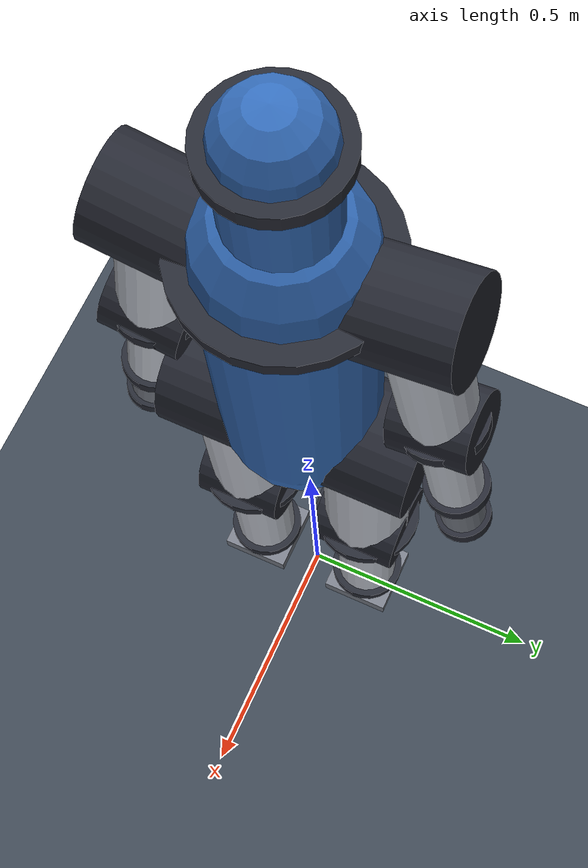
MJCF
<mujoco model="humanoid_anthropometric">
  <compiler angle="radian" autolimits="true"/>
  <option timestep="0.002" gravity="0 0 -9.81"/>
  <visual>
    <headlight ambient="0.45 0.45 0.48" diffuse="0.65 0.65 0.68" specular="0.22 0.22 0.22"/>
    <quality shadowsize="4096"/>
    <map znear="0.01" zfar="60"/>
  </visual>
  <default>
    <joint damping="0.8" armature="0.01"/>
    <geom friction="1 0.05 0.001"/>
  </default>
  <asset>
    <texture name="skybox" type="skybox" builtin="gradient" rgb1="0.16 0.18 0.23" rgb2="0.03 0.04 0.06" width="512" height="512"/>
    <texture name="grid" type="2d" builtin="checker" rgb1="0.21 0.24 0.29" rgb2="0.26 0.30 0.35" width="300" height="300"/>
    <material name="grid" texture="grid" texrepeat="6 6" specular="0.1" shininess="0.1" reflectance="0.02"/>
    <material name="mat_body" rgba="0.84 0.86 0.89 1" specular="0.35" shininess="0.45" reflectance="0.05"/>
    <material name="mat_joint" rgba="0.15 0.16 0.20 1" specular="0.6" shininess="0.7" reflectance="0.1"/>
    <material name="mat_accent" rgba="0.92 0.47 0.13 1" specular="0.45" shininess="0.55"/>
    <material name="mat_ee" rgba="0.22 0.24 0.29 1" specular="0.5" shininess="0.6"/>
    <material name="mat_alu" rgba="0.78 0.80 0.84 1" specular="0.55" shininess="0.5" reflectance="0.12"/>
    <material name="mat_steel" rgba="0.34 0.36 0.40 1" specular="0.7" shininess="0.7" reflectance="0.18"/>
    <material name="mat_cf" rgba="0.11 0.12 0.14 1" specular="0.45" shininess="0.4" reflectance="0.06"/>
    <material name="mat_ti" rgba="0.60 0.60 0.65 1" specular="0.5" shininess="0.55" reflectance="0.1"/>
    <material name="mat_shell" rgba="0.20 0.42 0.72 1" specular="0.4" shininess="0.5" reflectance="0.05"/>
    <material name="mat_metal" rgba="0.47 0.49 0.53 1" specular="0.78" shininess="0.78" reflectance="0.22"/>
    <material name="mat_rubber" rgba="0.13 0.13 0.15 1" specular="0.15" shininess="0.15"/>
  </asset>
  <worldbody>
    <light name="key" pos="1.6 -1.1 3.0" dir="-0.45 0.32 -1" diffuse="0.55 0.55 0.58" specular="0.25 0.25 0.25"/>
    <light name="fill" pos="-2.0 1.6 2.2" dir="0.5 -0.42 -1" diffuse="0.22 0.22 0.26"/>
    <geom name="floor" type="plane" size="3 3 0.1" material="grid"/>
    <body name="torso" pos="0.00000 0.00000 0.83980">
      <freejoint name="torso_free"/>
      <geom name="torso_geom" type="capsule" fromto="0 0 0 0 0 0.51250" size="0.13530" mass="18.00000" material="mat_shell"/>
      <geom name="torso_collar" type="cylinder" fromto="0 0 0.50050 0 0 0.52450" size="0.16507" material="mat_joint" mass="0" contype="0" conaffinity="0"/>
      <body name="neck" pos="0.00000 0.00000 0.51250">
        <geom name="neck_geom" type="cylinder" fromto="0 0 0 0 0 0.06150" size="0.06150" mass="0.60000" material="mat_alu"/>
        <geom name="neck_collar" type="cylinder" fromto="0 0 0.05535 0 0 0.06765" size="0.07503" material="mat_joint" mass="0" contype="0" conaffinity="0"/>
        <body name="head" pos="0.00000 0.00000 0.06150">
          <geom name="head_geom" type="capsule" fromto="0 0 0 0 0 0.18450" size="0.08200" mass="1.20000" material="mat_shell"/>
          <geom name="head_collar" type="cylinder" fromto="0 0 0.17250 0 0 0.19650" size="0.10004" material="mat_joint" mass="0" contype="0" conaffinity="0"/>
        </body>

      </body>

      <body name="l_uparm" pos="0.00000 0.19122 0.49712" euler="3.31159 0.00000 0.00000">
        <joint name="l_uparm_joint" type="hinge" axis="0.0000 1.0000 0.0000" range="-3.0000 3.0000"/>
        <geom name="l_uparm_geom" type="capsule" fromto="0 0 0 0 0 0.30340" size="0.06150" mass="1.80000" material="mat_alu"/>
        <geom name="l_uparm_motor" type="cylinder" fromto="-0.00000 -0.08150 -0.00000 0.00000 0.08150 0.00000" size="0.08350" material="mat_joint" mass="0" contype="0" conaffinity="0"/>
        <geom name="l_uparm_collar" type="cylinder" fromto="0 0 0.29140 0 0 0.31540" size="0.07503" material="mat_joint" mass="0" contype="0" conaffinity="0"/>
        <body name="l_forearm" pos="0.00000 0.00000 0.30340">
          <joint name="l_forearm_joint" type="hinge" axis="0.0000 1.0000 0.0000" range="-2.6000 0.0000"/>
          <geom name="l_forearm_geom" type="capsule" fromto="0 0 0 0 0 0.25010" size="0.04715" mass="1.00000" material="mat_alu"/>
          <geom name="l_forearm_motor" type="cylinder" fromto="-0.00000 -0.06715 -0.00000 0.00000 0.06715 0.00000" size="0.06837" material="mat_joint" mass="0" contype="0" conaffinity="0"/>
          <geom name="l_forearm_collar" type="cylinder" fromto="0 0 0.23810 0 0 0.26210" size="0.05752" material="mat_joint" mass="0" contype="0" conaffinity="0"/>
          <body name="l_hand" pos="0.00000 0.00000 0.25010">
            <geom name="l_hand_geom" type="capsule" fromto="0 0 0 0 0 0.12710" size="0.04100" mass="0.40000" material="mat_metal"/>
            <geom name="l_hand_collar" type="cylinder" fromto="0 0 0.11510 0 0 0.13910" size="0.05002" material="mat_joint" mass="0" contype="0" conaffinity="0"/>
          </body>

        </body>

      </body>

      <body name="r_uparm" pos="0.00000 -0.19122 0.49712" euler="2.97159 0.00000 0.00000">
        <joint name="r_uparm_joint" type="hinge" axis="0.0000 1.0000 0.0000" range="-3.0000 3.0000"/>
        <geom name="r_uparm_geom" type="capsule" fromto="0 0 0 0 0 0.30340" size="0.06150" mass="1.80000" material="mat_alu"/>
        <geom name="r_uparm_motor" type="cylinder" fromto="-0.00000 -0.08150 -0.00000 0.00000 0.08150 0.00000" size="0.08350" material="mat_joint" mass="0" contype="0" conaffinity="0"/>
        <geom name="r_uparm_collar" type="cylinder" fromto="0 0 0.29140 0 0 0.31540" size="0.07503" material="mat_joint" mass="0" contype="0" conaffinity="0"/>
        <body name="r_forearm" pos="0.00000 0.00000 0.30340">
          <joint name="r_forearm_joint" type="hinge" axis="0.0000 1.0000 0.0000" range="-2.6000 0.0000"/>
          <geom name="r_forearm_geom" type="capsule" fromto="0 0 0 0 0 0.25010" size="0.04715" mass="1.00000" material="mat_alu"/>
          <geom name="r_forearm_motor" type="cylinder" fromto="-0.00000 -0.06715 -0.00000 0.00000 0.06715 0.00000" size="0.06837" material="mat_joint" mass="0" contype="0" conaffinity="0"/>
          <geom name="r_forearm_collar" type="cylinder" fromto="0 0 0.23810 0 0 0.26210" size="0.05752" material="mat_joint" mass="0" contype="0" conaffinity="0"/>
          <body name="r_hand" pos="0.00000 0.00000 0.25010">
            <geom name="r_hand_geom" type="capsule" fromto="0 0 0 0 0 0.12710" size="0.04100" mass="0.40000" material="mat_metal"/>
            <geom name="r_hand_collar" type="cylinder" fromto="0 0 0.11510 0 0 0.13910" size="0.05002" material="mat_joint" mass="0" contype="0" conaffinity="0"/>
            <site name="ee_site" pos="0 0 0.12710" size="0.01"/>
          </body>

        </body>

      </body>

      <body name="l_thigh" pos="0.00000 0.12136 0.00000" euler="3.14159 0.00000 0.00000">
        <joint name="l_thigh_joint" type="hinge" axis="0.0000 1.0000 0.0000" range="-2.2000 2.2000"/>
        <geom name="l_thigh_geom" type="capsule" fromto="0 0 0 0 0 0.38950" size="0.08200" mass="4.50000" material="mat_alu"/>
        <geom name="l_thigh_motor" type="cylinder" fromto="-0.00000 -0.10200 -0.00000 0.00000 0.10200 0.00000" size="0.10400" material="mat_joint" mass="0" contype="0" conaffinity="0"/>
        <geom name="l_thigh_collar" type="cylinder" fromto="0 0 0.37750 0 0 0.40150" size="0.10004" material="mat_joint" mass="0" contype="0" conaffinity="0"/>
        <body name="l_shin" pos="0.00000 0.00000 0.38950">
          <joint name="l_shin_joint" type="hinge" axis="0.0000 1.0000 0.0000" range="0.0000 2.4000"/>
          <geom name="l_shin_geom" type="capsule" fromto="0 0 0 0 0 0.35875" size="0.06150" mass="2.60000" material="mat_alu"/>
          <geom name="l_shin_motor" type="cylinder" fromto="-0.00000 -0.08150 -0.00000 0.00000 0.08150 0.00000" size="0.08350" material="mat_joint" mass="0" contype="0" conaffinity="0"/>
          <geom name="l_shin_collar" type="cylinder" fromto="0 0 0.34675 0 0 0.37075" size="0.07503" material="mat_joint" mass="0" contype="0" conaffinity="0"/>
          <body name="l_foot" pos="0.00000 0.00000 0.42025" euler="3.14159 0.00000 0.00000">
            <geom name="l_foot_geom" type="box" pos="0 0 0.01640" size="0.06970 0.06970 0.01640" mass="0.60000" material="mat_metal"/>
          </body>

        </body>

      </body>

      <body name="r_thigh" pos="0.00000 -0.12136 0.00000" euler="3.14159 0.00000 0.00000">
        <joint name="r_thigh_joint" type="hinge" axis="0.0000 1.0000 0.0000" range="-2.2000 2.2000"/>
        <geom name="r_thigh_geom" type="capsule" fromto="0 0 0 0 0 0.38950" size="0.08200" mass="4.50000" material="mat_alu"/>
        <geom name="r_thigh_motor" type="cylinder" fromto="-0.00000 -0.10200 -0.00000 0.00000 0.10200 0.00000" size="0.10400" material="mat_joint" mass="0" contype="0" conaffinity="0"/>
        <geom name="r_thigh_collar" type="cylinder" fromto="0 0 0.37750 0 0 0.40150" size="0.10004" material="mat_joint" mass="0" contype="0" conaffinity="0"/>
        <body name="r_shin" pos="0.00000 0.00000 0.38950">
          <joint name="r_shin_joint" type="hinge" axis="0.0000 1.0000 0.0000" range="0.0000 2.4000"/>
          <geom name="r_shin_geom" type="capsule" fromto="0 0 0 0 0 0.35875" size="0.06150" mass="2.60000" material="mat_alu"/>
          <geom name="r_shin_motor" type="cylinder" fromto="-0.00000 -0.08150 -0.00000 0.00000 0.08150 0.00000" size="0.08350" material="mat_joint" mass="0" contype="0" conaffinity="0"/>
          <geom name="r_shin_collar" type="cylinder" fromto="0 0 0.34675 0 0 0.37075" size="0.07503" material="mat_joint" mass="0" contype="0" conaffinity="0"/>
          <body name="r_foot" pos="0.00000 0.00000 0.42025" euler="3.14159 0.00000 0.00000">
            <geom name="r_foot_geom" type="box" pos="0 0 0.01640" size="0.06970 0.06970 0.01640" mass="0.60000" material="mat_metal"/>
          </body>

        </body>

      </body>

    </body>
  </worldbody>
  <actuator>
    <motor name="l_uparm_motor" joint="l_uparm_joint" gear="1" forcerange="-18.00 18.00"/>
    <motor name="l_forearm_motor" joint="l_forearm_joint" gear="1" forcerange="-12.00 12.00"/>
    <motor name="r_uparm_motor" joint="r_uparm_joint" gear="1" forcerange="-18.00 18.00"/>
    <motor name="r_forearm_motor" joint="r_forearm_joint" gear="1" forcerange="-12.00 12.00"/>
    <motor name="l_thigh_motor" joint="l_thigh_joint" gear="1" forcerange="-42.00 42.00"/>
    <motor name="l_shin_motor" joint="l_shin_joint" gear="1" forcerange="-30.00 30.00"/>
    <motor name="r_thigh_motor" joint="r_thigh_joint" gear="1" forcerange="-42.00 42.00"/>
    <motor name="r_shin_motor" joint="r_shin_joint" gear="1" forcerange="-30.00 30.00"/>
  </actuator>
</mujoco>
